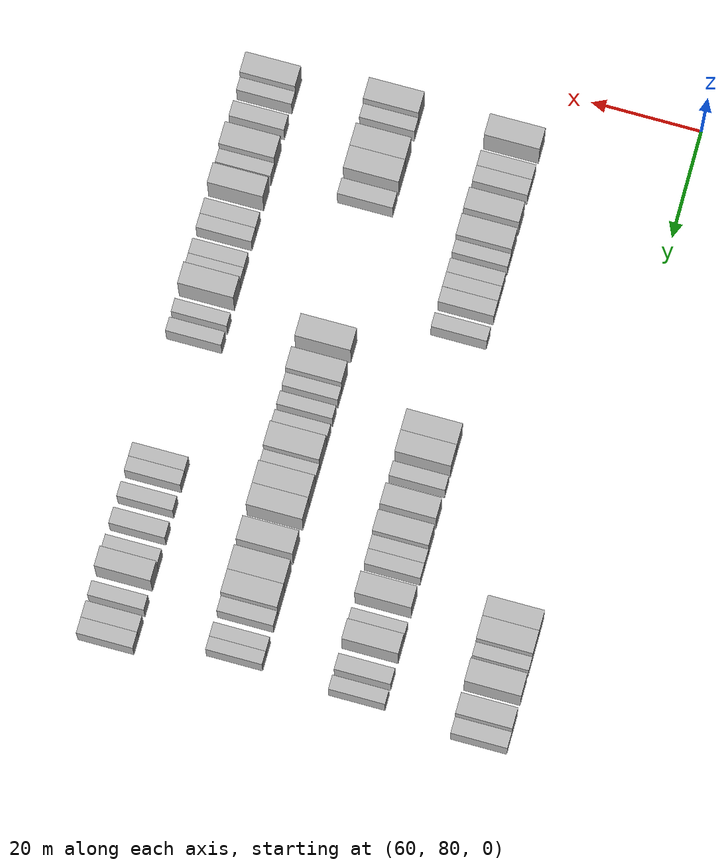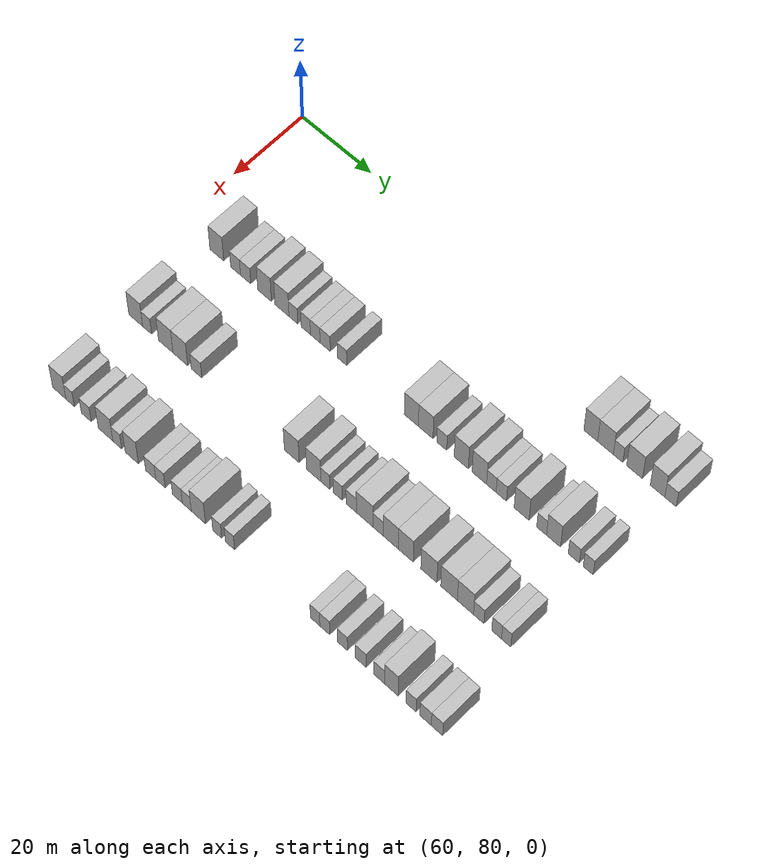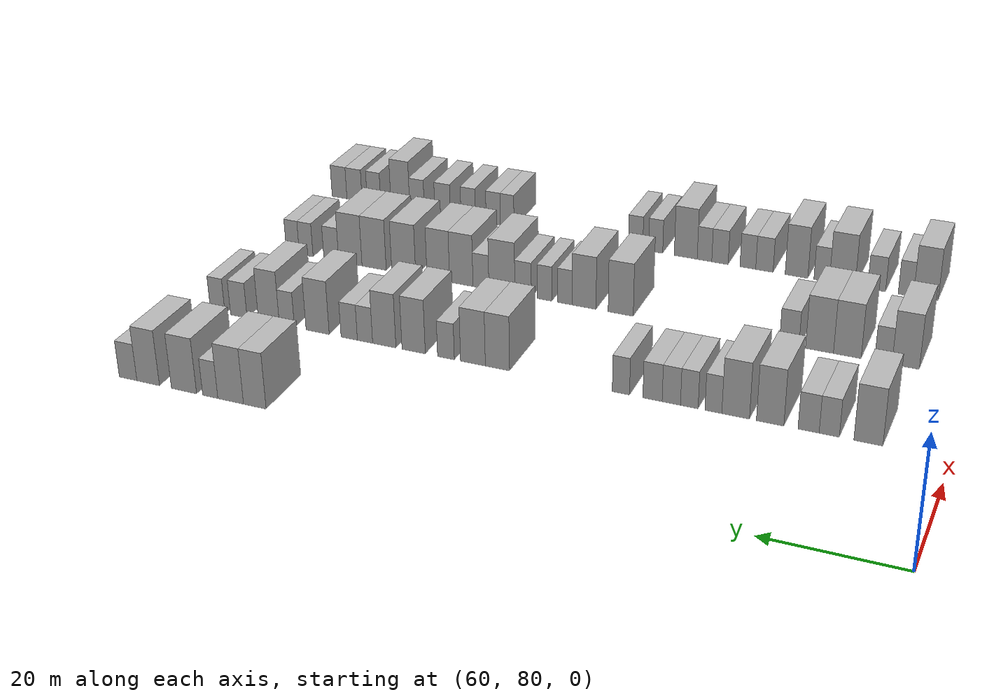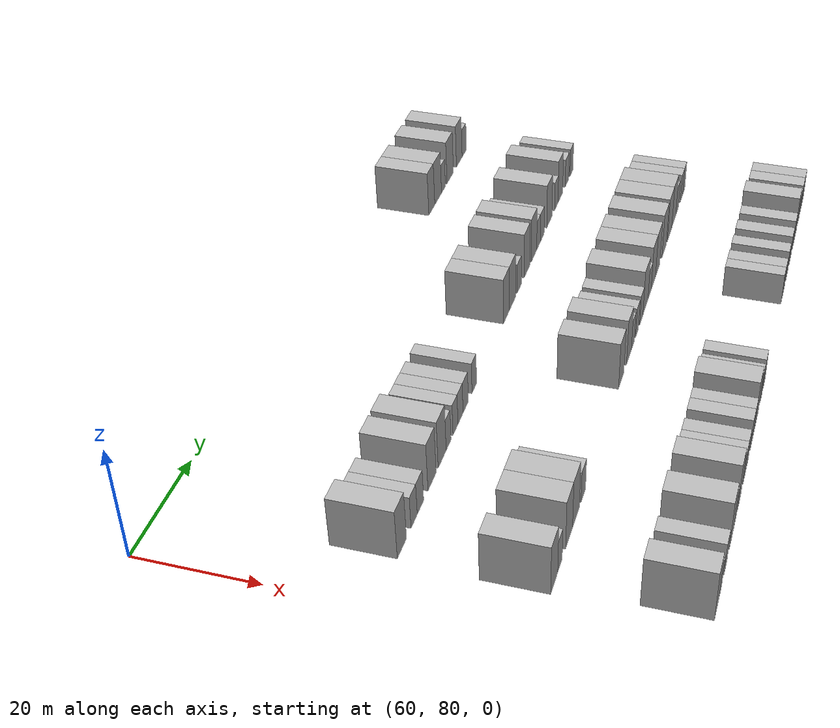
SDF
<sdf version="1.6">
 <world name="default">
  <model name="building_506">
   <static>1</static>
   <pose>69.0000 173.4881 0 0.000000 0.000000 0.000000</pose>
   <link name="link">
    <pose>0 0 4.50 0 0 0</pose>
    <collision name="collision"><geometry><box><size>10.0000 3.6244 9.0000</size></box></geometry></collision>
    <visual name="visual">
     <cast_shadows>0</cast_shadows>
     <geometry><box><size>10.0000 3.6244 9.0000</size></box></geometry>
     <material>
      <script>
       <uri>model://HANNAS_wall/materials/scripts</uri>
       <uri>model://HANNAS_wall/materials/textures</uri>
       <name>vrc/HANNAS_wall</name>
      </script>
     </material>
    </visual>
   </link>
  </model>
  <model name="building_507">
   <static>1</static>
   <pose>69.0000 177.3766 0 0.000000 0.000000 0.000000</pose>
   <link name="link">
    <pose>0 0 4.50 0 0 0</pose>
    <collision name="collision"><geometry><box><size>10.0000 4.1527 9.0000</size></box></geometry></collision>
    <visual name="visual">
     <cast_shadows>0</cast_shadows>
     <geometry><box><size>10.0000 4.1527 9.0000</size></box></geometry>
     <material>
      <script>
       <uri>model://HANNAS_wall/materials/scripts</uri>
       <uri>model://HANNAS_wall/materials/textures</uri>
       <name>vrc/HANNAS_wall</name>
      </script>
     </material>
    </visual>
   </link>
  </model>
  <model name="building_508">
   <static>1</static>
   <pose>69.0000 180.6867 0 0.000000 0.000000 0.000000</pose>
   <link name="link">
    <pose>0 0 3.00 0 0 0</pose>
    <collision name="collision"><geometry><box><size>10.0000 2.4676 6.0000</size></box></geometry></collision>
    <visual name="visual">
     <cast_shadows>0</cast_shadows>
     <geometry><box><size>10.0000 2.4676 6.0000</size></box></geometry>
     <material>
      <script>
       <uri>model://HANNAS_wall/materials/scripts</uri>
       <uri>model://HANNAS_wall/materials/textures</uri>
       <name>vrc/HANNAS_wall</name>
      </script>
     </material>
    </visual>
   </link>
  </model>
  <model name="building_509">
   <static>1</static>
   <pose>69.0000 184.9966 0 0.000000 0.000000 0.000000</pose>
   <link name="link">
    <pose>0 0 4.50 0 0 0</pose>
    <collision name="collision"><geometry><box><size>10.0000 4.1522 9.0000</size></box></geometry></collision>
    <visual name="visual">
     <cast_shadows>0</cast_shadows>
     <geometry><box><size>10.0000 4.1522 9.0000</size></box></geometry>
     <material>
      <script>
       <uri>model://HANNAS_wall/materials/scripts</uri>
       <uri>model://HANNAS_wall/materials/textures</uri>
       <name>vrc/HANNAS_wall</name>
      </script>
     </material>
    </visual>
   </link>
  </model>
  <model name="building_510">
   <static>1</static>
   <pose>69.0000 190.9611 0 0.000000 0.000000 0.000000</pose>
   <link name="link">
    <pose>0 0 4.50 0 0 0</pose>
    <collision name="collision"><geometry><box><size>10.0000 3.7767 9.0000</size></box></geometry></collision>
    <visual name="visual">
     <cast_shadows>0</cast_shadows>
     <geometry><box><size>10.0000 3.7767 9.0000</size></box></geometry>
     <material>
      <script>
       <uri>model://HANNAS_wall/materials/scripts</uri>
       <uri>model://HANNAS_wall/materials/textures</uri>
       <name>vrc/HANNAS_wall</name>
      </script>
     </material>
    </visual>
   </link>
  </model>
  <model name="building_511">
   <static>1</static>
   <pose>69.0000 194.3309 0 0.000000 0.000000 0.000000</pose>
   <link name="link">
    <pose>0 0 3.00 0 0 0</pose>
    <collision name="collision"><geometry><box><size>10.0000 2.9629 6.0000</size></box></geometry></collision>
    <visual name="visual">
     <cast_shadows>0</cast_shadows>
     <geometry><box><size>10.0000 2.9629 6.0000</size></box></geometry>
     <material>
      <script>
       <uri>model://HANNAS_wall/materials/scripts</uri>
       <uri>model://HANNAS_wall/materials/textures</uri>
       <name>vrc/HANNAS_wall</name>
      </script>
     </material>
    </visual>
   </link>
  </model>
  <model name="building_675">
   <static>1</static>
   <pose>91.0000 91.2529 0 0.000000 0.000000 0.000000</pose>
   <link name="link">
    <pose>0 0 4.50 0 0 0</pose>
    <collision name="collision"><geometry><box><size>10.0000 3.9817 9.0000</size></box></geometry></collision>
    <visual name="visual">
     <cast_shadows>0</cast_shadows>
     <geometry><box><size>10.0000 3.9817 9.0000</size></box></geometry>
     <material>
      <script>
       <uri>model://HANNAS_wall/materials/scripts</uri>
       <uri>model://HANNAS_wall/materials/textures</uri>
       <name>vrc/HANNAS_wall</name>
      </script>
     </material>
    </visual>
   </link>
  </model>
  <model name="building_676">
   <static>1</static>
   <pose>91.0000 96.6469 0 0.000000 0.000000 0.000000</pose>
   <link name="link">
    <pose>0 0 3.00 0 0 0</pose>
    <collision name="collision"><geometry><box><size>10.0000 2.8063 6.0000</size></box></geometry></collision>
    <visual name="visual">
     <cast_shadows>0</cast_shadows>
     <geometry><box><size>10.0000 2.8063 6.0000</size></box></geometry>
     <material>
      <script>
       <uri>model://HANNAS_wall/materials/scripts</uri>
       <uri>model://HANNAS_wall/materials/textures</uri>
       <name>vrc/HANNAS_wall</name>
      </script>
     </material>
    </visual>
   </link>
  </model>
  <model name="building_677">
   <static>1</static>
   <pose>91.0000 99.5297 0 0.000000 0.000000 0.000000</pose>
   <link name="link">
    <pose>0 0 3.00 0 0 0</pose>
    <collision name="collision"><geometry><box><size>10.0000 2.9593 6.0000</size></box></geometry></collision>
    <visual name="visual">
     <cast_shadows>0</cast_shadows>
     <geometry><box><size>10.0000 2.9593 6.0000</size></box></geometry>
     <material>
      <script>
       <uri>model://HANNAS_wall/materials/scripts</uri>
       <uri>model://HANNAS_wall/materials/textures</uri>
       <name>vrc/HANNAS_wall</name>
      </script>
     </material>
    </visual>
   </link>
  </model>
  <model name="building_678">
   <static>1</static>
   <pose>91.0000 104.9585 0 0.000000 0.000000 0.000000</pose>
   <link name="link">
    <pose>0 0 4.50 0 0 0</pose>
    <collision name="collision"><geometry><box><size>10.0000 3.8983 9.0000</size></box></geometry></collision>
    <visual name="visual">
     <cast_shadows>0</cast_shadows>
     <geometry><box><size>10.0000 3.8983 9.0000</size></box></geometry>
     <material>
      <script>
       <uri>model://HANNAS_wall/materials/scripts</uri>
       <uri>model://HANNAS_wall/materials/textures</uri>
       <name>vrc/HANNAS_wall</name>
      </script>
     </material>
    </visual>
   </link>
  </model>
  <model name="building_679">
   <static>1</static>
   <pose>91.0000 109.9000 0 0.000000 0.000000 0.000000</pose>
   <link name="link">
    <pose>0 0 4.50 0 0 0</pose>
    <collision name="collision"><geometry><box><size>10.0000 3.9847 9.0000</size></box></geometry></collision>
    <visual name="visual">
     <cast_shadows>0</cast_shadows>
     <geometry><box><size>10.0000 3.9847 9.0000</size></box></geometry>
     <material>
      <script>
       <uri>model://HANNAS_wall/materials/scripts</uri>
       <uri>model://HANNAS_wall/materials/textures</uri>
       <name>vrc/HANNAS_wall</name>
      </script>
     </material>
    </visual>
   </link>
  </model>
  <model name="building_680">
   <static>1</static>
   <pose>91.0000 113.1168 0 0.000000 0.000000 0.000000</pose>
   <link name="link">
    <pose>0 0 3.00 0 0 0</pose>
    <collision name="collision"><geometry><box><size>10.0000 2.4487 6.0000</size></box></geometry></collision>
    <visual name="visual">
     <cast_shadows>0</cast_shadows>
     <geometry><box><size>10.0000 2.4487 6.0000</size></box></geometry>
     <material>
      <script>
       <uri>model://HANNAS_wall/materials/scripts</uri>
       <uri>model://HANNAS_wall/materials/textures</uri>
       <name>vrc/HANNAS_wall</name>
      </script>
     </material>
    </visual>
   </link>
  </model>
  <model name="building_681">
   <static>1</static>
   <pose>91.0000 116.6339 0 0.000000 0.000000 0.000000</pose>
   <link name="link">
    <pose>0 0 3.00 0 0 0</pose>
    <collision name="collision"><geometry><box><size>10.0000 2.5855 6.0000</size></box></geometry></collision>
    <visual name="visual">
     <cast_shadows>0</cast_shadows>
     <geometry><box><size>10.0000 2.5855 6.0000</size></box></geometry>
     <material>
      <script>
       <uri>model://HANNAS_wall/materials/scripts</uri>
       <uri>model://HANNAS_wall/materials/textures</uri>
       <name>vrc/HANNAS_wall</name>
      </script>
     </material>
    </visual>
   </link>
  </model>
  <model name="building_682">
   <static>1</static>
   <pose>91.0000 119.2786 0 0.000000 0.000000 0.000000</pose>
   <link name="link">
    <pose>0 0 3.00 0 0 0</pose>
    <collision name="collision"><geometry><box><size>10.0000 2.7039 6.0000</size></box></geometry></collision>
    <visual name="visual">
     <cast_shadows>0</cast_shadows>
     <geometry><box><size>10.0000 2.7039 6.0000</size></box></geometry>
     <material>
      <script>
       <uri>model://HANNAS_wall/materials/scripts</uri>
       <uri>model://HANNAS_wall/materials/textures</uri>
       <name>vrc/HANNAS_wall</name>
      </script>
     </material>
    </visual>
   </link>
  </model>
  <model name="building_683">
   <static>1</static>
   <pose>91.0000 122.0599 0 0.000000 0.000000 0.000000</pose>
   <link name="link">
    <pose>0 0 3.00 0 0 0</pose>
    <collision name="collision"><geometry><box><size>10.0000 2.8586 6.0000</size></box></geometry></collision>
    <visual name="visual">
     <cast_shadows>0</cast_shadows>
     <geometry><box><size>10.0000 2.8586 6.0000</size></box></geometry>
     <material>
      <script>
       <uri>model://HANNAS_wall/materials/scripts</uri>
       <uri>model://HANNAS_wall/materials/textures</uri>
       <name>vrc/HANNAS_wall</name>
      </script>
     </material>
    </visual>
   </link>
  </model>
  <model name="building_684">
   <static>1</static>
   <pose>91.0000 126.7881 0 0.000000 0.000000 0.000000</pose>
   <link name="link">
    <pose>0 0 3.00 0 0 0</pose>
    <collision name="collision"><geometry><box><size>10.0000 2.5979 6.0000</size></box></geometry></collision>
    <visual name="visual">
     <cast_shadows>0</cast_shadows>
     <geometry><box><size>10.0000 2.5979 6.0000</size></box></geometry>
     <material>
      <script>
       <uri>model://HANNAS_wall/materials/scripts</uri>
       <uri>model://HANNAS_wall/materials/textures</uri>
       <name>vrc/HANNAS_wall</name>
      </script>
     </material>
    </visual>
   </link>
  </model>
  <model name="building_685">
   <static>1</static>
   <pose>91.0000 145.8479 0 0.000000 0.000000 0.000000</pose>
   <link name="link">
    <pose>0 0 4.50 0 0 0</pose>
    <collision name="collision"><geometry><box><size>10.0000 3.8405 9.0000</size></box></geometry></collision>
    <visual name="visual">
     <cast_shadows>0</cast_shadows>
     <geometry><box><size>10.0000 3.8405 9.0000</size></box></geometry>
     <material>
      <script>
       <uri>model://HANNAS_wall/materials/scripts</uri>
       <uri>model://HANNAS_wall/materials/textures</uri>
       <name>vrc/HANNAS_wall</name>
      </script>
     </material>
    </visual>
   </link>
  </model>
  <model name="building_686">
   <static>1</static>
   <pose>91.0000 149.7458 0 0.000000 0.000000 0.000000</pose>
   <link name="link">
    <pose>0 0 4.50 0 0 0</pose>
    <collision name="collision"><geometry><box><size>10.0000 3.9554 9.0000</size></box></geometry></collision>
    <visual name="visual">
     <cast_shadows>0</cast_shadows>
     <geometry><box><size>10.0000 3.9554 9.0000</size></box></geometry>
     <material>
      <script>
       <uri>model://HANNAS_wall/materials/scripts</uri>
       <uri>model://HANNAS_wall/materials/textures</uri>
       <name>vrc/HANNAS_wall</name>
      </script>
     </material>
    </visual>
   </link>
  </model>
  <model name="building_687">
   <static>1</static>
   <pose>91.0000 154.0762 0 0.000000 0.000000 0.000000</pose>
   <link name="link">
    <pose>0 0 3.00 0 0 0</pose>
    <collision name="collision"><geometry><box><size>10.0000 2.7052 6.0000</size></box></geometry></collision>
    <visual name="visual">
     <cast_shadows>0</cast_shadows>
     <geometry><box><size>10.0000 2.7052 6.0000</size></box></geometry>
     <material>
      <script>
       <uri>model://HANNAS_wall/materials/scripts</uri>
       <uri>model://HANNAS_wall/materials/textures</uri>
       <name>vrc/HANNAS_wall</name>
      </script>
     </material>
    </visual>
   </link>
  </model>
  <model name="building_688">
   <static>1</static>
   <pose>91.0000 159.3358 0 0.000000 0.000000 0.000000</pose>
   <link name="link">
    <pose>0 0 4.50 0 0 0</pose>
    <collision name="collision"><geometry><box><size>10.0000 3.8141 9.0000</size></box></geometry></collision>
    <visual name="visual">
     <cast_shadows>0</cast_shadows>
     <geometry><box><size>10.0000 3.8141 9.0000</size></box></geometry>
     <material>
      <script>
       <uri>model://HANNAS_wall/materials/scripts</uri>
       <uri>model://HANNAS_wall/materials/textures</uri>
       <name>vrc/HANNAS_wall</name>
      </script>
     </material>
    </visual>
   </link>
  </model>
  <model name="building_689">
   <static>1</static>
   <pose>91.0000 164.1728 0 0.000000 0.000000 0.000000</pose>
   <link name="link">
    <pose>0 0 4.50 0 0 0</pose>
    <collision name="collision"><geometry><box><size>10.0000 3.8598 9.0000</size></box></geometry></collision>
    <visual name="visual">
     <cast_shadows>0</cast_shadows>
     <geometry><box><size>10.0000 3.8598 9.0000</size></box></geometry>
     <material>
      <script>
       <uri>model://HANNAS_wall/materials/scripts</uri>
       <uri>model://HANNAS_wall/materials/textures</uri>
       <name>vrc/HANNAS_wall</name>
      </script>
     </material>
    </visual>
   </link>
  </model>
  <model name="building_690">
   <static>1</static>
   <pose>91.0000 167.3765 0 0.000000 0.000000 0.000000</pose>
   <link name="link">
    <pose>0 0 3.00 0 0 0</pose>
    <collision name="collision"><geometry><box><size>10.0000 2.5475 6.0000</size></box></geometry></collision>
    <visual name="visual">
     <cast_shadows>0</cast_shadows>
     <geometry><box><size>10.0000 2.5475 6.0000</size></box></geometry>
     <material>
      <script>
       <uri>model://HANNAS_wall/materials/scripts</uri>
       <uri>model://HANNAS_wall/materials/textures</uri>
       <name>vrc/HANNAS_wall</name>
      </script>
     </material>
    </visual>
   </link>
  </model>
  <model name="building_691">
   <static>1</static>
   <pose>91.0000 170.0229 0 0.000000 0.000000 0.000000</pose>
   <link name="link">
    <pose>0 0 3.00 0 0 0</pose>
    <collision name="collision"><geometry><box><size>10.0000 2.7454 6.0000</size></box></geometry></collision>
    <visual name="visual">
     <cast_shadows>0</cast_shadows>
     <geometry><box><size>10.0000 2.7454 6.0000</size></box></geometry>
     <material>
      <script>
       <uri>model://HANNAS_wall/materials/scripts</uri>
       <uri>model://HANNAS_wall/materials/textures</uri>
       <name>vrc/HANNAS_wall</name>
      </script>
     </material>
    </visual>
   </link>
  </model>
  <model name="building_692">
   <static>1</static>
   <pose>91.0000 175.3653 0 0.000000 0.000000 0.000000</pose>
   <link name="link">
    <pose>0 0 4.50 0 0 0</pose>
    <collision name="collision"><geometry><box><size>10.0000 3.9392 9.0000</size></box></geometry></collision>
    <visual name="visual">
     <cast_shadows>0</cast_shadows>
     <geometry><box><size>10.0000 3.9392 9.0000</size></box></geometry>
     <material>
      <script>
       <uri>model://HANNAS_wall/materials/scripts</uri>
       <uri>model://HANNAS_wall/materials/textures</uri>
       <name>vrc/HANNAS_wall</name>
      </script>
     </material>
    </visual>
   </link>
  </model>
  <model name="building_693">
   <static>1</static>
   <pose>91.0000 180.6300 0 0.000000 0.000000 0.000000</pose>
   <link name="link">
    <pose>0 0 3.00 0 0 0</pose>
    <collision name="collision"><geometry><box><size>10.0000 2.5902 6.0000</size></box></geometry></collision>
    <visual name="visual">
     <cast_shadows>0</cast_shadows>
     <geometry><box><size>10.0000 2.5902 6.0000</size></box></geometry>
     <material>
      <script>
       <uri>model://HANNAS_wall/materials/scripts</uri>
       <uri>model://HANNAS_wall/materials/textures</uri>
       <name>vrc/HANNAS_wall</name>
      </script>
     </material>
    </visual>
   </link>
  </model>
  <model name="building_694">
   <static>1</static>
   <pose>91.0000 183.7454 0 0.000000 0.000000 0.000000</pose>
   <link name="link">
    <pose>0 0 4.50 0 0 0</pose>
    <collision name="collision"><geometry><box><size>10.0000 3.6407 9.0000</size></box></geometry></collision>
    <visual name="visual">
     <cast_shadows>0</cast_shadows>
     <geometry><box><size>10.0000 3.6407 9.0000</size></box></geometry>
     <material>
      <script>
       <uri>model://HANNAS_wall/materials/scripts</uri>
       <uri>model://HANNAS_wall/materials/textures</uri>
       <name>vrc/HANNAS_wall</name>
      </script>
     </material>
    </visual>
   </link>
  </model>
  <model name="building_695">
   <static>1</static>
   <pose>91.0000 189.0117 0 0.000000 0.000000 0.000000</pose>
   <link name="link">
    <pose>0 0 3.00 0 0 0</pose>
    <collision name="collision"><geometry><box><size>10.0000 2.8918 6.0000</size></box></geometry></collision>
    <visual name="visual">
     <cast_shadows>0</cast_shadows>
     <geometry><box><size>10.0000 2.8918 6.0000</size></box></geometry>
     <material>
      <script>
       <uri>model://HANNAS_wall/materials/scripts</uri>
       <uri>model://HANNAS_wall/materials/textures</uri>
       <name>vrc/HANNAS_wall</name>
      </script>
     </material>
    </visual>
   </link>
  </model>
  <model name="building_696">
   <static>1</static>
   <pose>91.0000 192.7382 0 0.000000 0.000000 0.000000</pose>
   <link name="link">
    <pose>0 0 3.00 0 0 0</pose>
    <collision name="collision"><geometry><box><size>10.0000 2.5612 6.0000</size></box></geometry></collision>
    <visual name="visual">
     <cast_shadows>0</cast_shadows>
     <geometry><box><size>10.0000 2.5612 6.0000</size></box></geometry>
     <material>
      <script>
       <uri>model://HANNAS_wall/materials/scripts</uri>
       <uri>model://HANNAS_wall/materials/textures</uri>
       <name>vrc/HANNAS_wall</name>
      </script>
     </material>
    </visual>
   </link>
  </model>
  <model name="building_860">
   <static>1</static>
   <pose>113.0000 90.5092 0 0.000000 0.000000 0.000000</pose>
   <link name="link">
    <pose>0 0 4.50 0 0 0</pose>
    <collision name="collision"><geometry><box><size>10.0000 3.9956 9.0000</size></box></geometry></collision>
    <visual name="visual">
     <cast_shadows>0</cast_shadows>
     <geometry><box><size>10.0000 3.9956 9.0000</size></box></geometry>
     <material>
      <script>
       <uri>model://HANNAS_wall/materials/scripts</uri>
       <uri>model://HANNAS_wall/materials/textures</uri>
       <name>vrc/HANNAS_wall</name>
      </script>
     </material>
    </visual>
   </link>
  </model>
  <model name="building_861">
   <static>1</static>
   <pose>113.0000 93.7954 0 0.000000 0.000000 0.000000</pose>
   <link name="link">
    <pose>0 0 3.00 0 0 0</pose>
    <collision name="collision"><geometry><box><size>10.0000 2.5767 6.0000</size></box></geometry></collision>
    <visual name="visual">
     <cast_shadows>0</cast_shadows>
     <geometry><box><size>10.0000 2.5767 6.0000</size></box></geometry>
     <material>
      <script>
       <uri>model://HANNAS_wall/materials/scripts</uri>
       <uri>model://HANNAS_wall/materials/textures</uri>
       <name>vrc/HANNAS_wall</name>
      </script>
     </material>
    </visual>
   </link>
  </model>
  <model name="building_862">
   <static>1</static>
   <pose>113.0000 99.1512 0 0.000000 0.000000 0.000000</pose>
   <link name="link">
    <pose>0 0 4.50 0 0 0</pose>
    <collision name="collision"><geometry><box><size>10.0000 4.1348 9.0000</size></box></geometry></collision>
    <visual name="visual">
     <cast_shadows>0</cast_shadows>
     <geometry><box><size>10.0000 4.1348 9.0000</size></box></geometry>
     <material>
      <script>
       <uri>model://HANNAS_wall/materials/scripts</uri>
       <uri>model://HANNAS_wall/materials/textures</uri>
       <name>vrc/HANNAS_wall</name>
      </script>
     </material>
    </visual>
   </link>
  </model>
  <model name="building_863">
   <static>1</static>
   <pose>113.0000 103.3302 0 0.000000 0.000000 0.000000</pose>
   <link name="link">
    <pose>0 0 4.50 0 0 0</pose>
    <collision name="collision"><geometry><box><size>10.0000 4.2232 9.0000</size></box></geometry></collision>
    <visual name="visual">
     <cast_shadows>0</cast_shadows>
     <geometry><box><size>10.0000 4.2232 9.0000</size></box></geometry>
     <material>
      <script>
       <uri>model://HANNAS_wall/materials/scripts</uri>
       <uri>model://HANNAS_wall/materials/textures</uri>
       <name>vrc/HANNAS_wall</name>
      </script>
     </material>
    </visual>
   </link>
  </model>
  <model name="building_864">
   <static>1</static>
   <pose>113.0000 107.9316 0 0.000000 0.000000 0.000000</pose>
   <link name="link">
    <pose>0 0 3.00 0 0 0</pose>
    <collision name="collision"><geometry><box><size>10.0000 2.9796 6.0000</size></box></geometry></collision>
    <visual name="visual">
     <cast_shadows>0</cast_shadows>
     <geometry><box><size>10.0000 2.9796 6.0000</size></box></geometry>
     <material>
      <script>
       <uri>model://HANNAS_wall/materials/scripts</uri>
       <uri>model://HANNAS_wall/materials/textures</uri>
       <name>vrc/HANNAS_wall</name>
      </script>
     </material>
    </visual>
   </link>
  </model>
  <model name="building_865">
   <static>1</static>
   <pose>113.0000 134.5633 0 0.000000 0.000000 0.000000</pose>
   <link name="link">
    <pose>0 0 4.50 0 0 0</pose>
    <collision name="collision"><geometry><box><size>10.0000 4.0946 9.0000</size></box></geometry></collision>
    <visual name="visual">
     <cast_shadows>0</cast_shadows>
     <geometry><box><size>10.0000 4.0946 9.0000</size></box></geometry>
     <material>
      <script>
       <uri>model://HANNAS_wall/materials/scripts</uri>
       <uri>model://HANNAS_wall/materials/textures</uri>
       <name>vrc/HANNAS_wall</name>
      </script>
     </material>
    </visual>
   </link>
  </model>
  <model name="building_866">
   <static>1</static>
   <pose>113.0000 140.5781 0 0.000000 0.000000 0.000000</pose>
   <link name="link">
    <pose>0 0 4.50 0 0 0</pose>
    <collision name="collision"><geometry><box><size>10.0000 3.9350 9.0000</size></box></geometry></collision>
    <visual name="visual">
     <cast_shadows>0</cast_shadows>
     <geometry><box><size>10.0000 3.9350 9.0000</size></box></geometry>
     <material>
      <script>
       <uri>model://HANNAS_wall/materials/scripts</uri>
       <uri>model://HANNAS_wall/materials/textures</uri>
       <name>vrc/HANNAS_wall</name>
      </script>
     </material>
    </visual>
   </link>
  </model>
  <model name="building_867">
   <static>1</static>
   <pose>113.0000 143.7592 0 0.000000 0.000000 0.000000</pose>
   <link name="link">
    <pose>0 0 3.00 0 0 0</pose>
    <collision name="collision"><geometry><box><size>10.0000 2.4272 6.0000</size></box></geometry></collision>
    <visual name="visual">
     <cast_shadows>0</cast_shadows>
     <geometry><box><size>10.0000 2.4272 6.0000</size></box></geometry>
     <material>
      <script>
       <uri>model://HANNAS_wall/materials/scripts</uri>
       <uri>model://HANNAS_wall/materials/textures</uri>
       <name>vrc/HANNAS_wall</name>
      </script>
     </material>
    </visual>
   </link>
  </model>
  <model name="building_868">
   <static>1</static>
   <pose>113.0000 147.1891 0 0.000000 0.000000 0.000000</pose>
   <link name="link">
    <pose>0 0 3.00 0 0 0</pose>
    <collision name="collision"><geometry><box><size>10.0000 2.4325 6.0000</size></box></geometry></collision>
    <visual name="visual">
     <cast_shadows>0</cast_shadows>
     <geometry><box><size>10.0000 2.4325 6.0000</size></box></geometry>
     <material>
      <script>
       <uri>model://HANNAS_wall/materials/scripts</uri>
       <uri>model://HANNAS_wall/materials/textures</uri>
       <name>vrc/HANNAS_wall</name>
      </script>
     </material>
    </visual>
   </link>
  </model>
  <model name="building_869">
   <static>1</static>
   <pose>113.0000 150.8046 0 0.000000 0.000000 0.000000</pose>
   <link name="link">
    <pose>0 0 3.00 0 0 0</pose>
    <collision name="collision"><geometry><box><size>10.0000 2.7986 6.0000</size></box></geometry></collision>
    <visual name="visual">
     <cast_shadows>0</cast_shadows>
     <geometry><box><size>10.0000 2.7986 6.0000</size></box></geometry>
     <material>
      <script>
       <uri>model://HANNAS_wall/materials/scripts</uri>
       <uri>model://HANNAS_wall/materials/textures</uri>
       <name>vrc/HANNAS_wall</name>
      </script>
     </material>
    </visual>
   </link>
  </model>
  <model name="building_870">
   <static>1</static>
   <pose>113.0000 154.4270 0 0.000000 0.000000 0.000000</pose>
   <link name="link">
    <pose>0 0 4.50 0 0 0</pose>
    <collision name="collision"><geometry><box><size>10.0000 4.4460 9.0000</size></box></geometry></collision>
    <visual name="visual">
     <cast_shadows>0</cast_shadows>
     <geometry><box><size>10.0000 4.4460 9.0000</size></box></geometry>
     <material>
      <script>
       <uri>model://HANNAS_wall/materials/scripts</uri>
       <uri>model://HANNAS_wall/materials/textures</uri>
       <name>vrc/HANNAS_wall</name>
      </script>
     </material>
    </visual>
   </link>
  </model>
  <model name="building_871">
   <static>1</static>
   <pose>113.0000 158.0228 0 0.000000 0.000000 0.000000</pose>
   <link name="link">
    <pose>0 0 3.00 0 0 0</pose>
    <collision name="collision"><geometry><box><size>10.0000 2.7457 6.0000</size></box></geometry></collision>
    <visual name="visual">
     <cast_shadows>0</cast_shadows>
     <geometry><box><size>10.0000 2.7457 6.0000</size></box></geometry>
     <material>
      <script>
       <uri>model://HANNAS_wall/materials/scripts</uri>
       <uri>model://HANNAS_wall/materials/textures</uri>
       <name>vrc/HANNAS_wall</name>
      </script>
     </material>
    </visual>
   </link>
  </model>
  <model name="building_872">
   <static>1</static>
   <pose>113.0000 161.4268 0 0.000000 0.000000 0.000000</pose>
   <link name="link">
    <pose>0 0 4.50 0 0 0</pose>
    <collision name="collision"><geometry><box><size>10.0000 4.0623 9.0000</size></box></geometry></collision>
    <visual name="visual">
     <cast_shadows>0</cast_shadows>
     <geometry><box><size>10.0000 4.0623 9.0000</size></box></geometry>
     <material>
      <script>
       <uri>model://HANNAS_wall/materials/scripts</uri>
       <uri>model://HANNAS_wall/materials/textures</uri>
       <name>vrc/HANNAS_wall</name>
      </script>
     </material>
    </visual>
   </link>
  </model>
  <model name="building_873">
   <static>1</static>
   <pose>113.0000 165.4448 0 0.000000 0.000000 0.000000</pose>
   <link name="link">
    <pose>0 0 4.50 0 0 0</pose>
    <collision name="collision"><geometry><box><size>10.0000 3.9738 9.0000</size></box></geometry></collision>
    <visual name="visual">
     <cast_shadows>0</cast_shadows>
     <geometry><box><size>10.0000 3.9738 9.0000</size></box></geometry>
     <material>
      <script>
       <uri>model://HANNAS_wall/materials/scripts</uri>
       <uri>model://HANNAS_wall/materials/textures</uri>
       <name>vrc/HANNAS_wall</name>
      </script>
     </material>
    </visual>
   </link>
  </model>
  <model name="building_874">
   <static>1</static>
   <pose>113.0000 171.5620 0 0.000000 0.000000 0.000000</pose>
   <link name="link">
    <pose>0 0 4.50 0 0 0</pose>
    <collision name="collision"><geometry><box><size>10.0000 4.2605 9.0000</size></box></geometry></collision>
    <visual name="visual">
     <cast_shadows>0</cast_shadows>
     <geometry><box><size>10.0000 4.2605 9.0000</size></box></geometry>
     <material>
      <script>
       <uri>model://HANNAS_wall/materials/scripts</uri>
       <uri>model://HANNAS_wall/materials/textures</uri>
       <name>vrc/HANNAS_wall</name>
      </script>
     </material>
    </visual>
   </link>
  </model>
  <model name="building_875">
   <static>1</static>
   <pose>113.0000 176.8735 0 0.000000 0.000000 0.000000</pose>
   <link name="link">
    <pose>0 0 4.50 0 0 0</pose>
    <collision name="collision"><geometry><box><size>10.0000 4.3626 9.0000</size></box></geometry></collision>
    <visual name="visual">
     <cast_shadows>0</cast_shadows>
     <geometry><box><size>10.0000 4.3626 9.0000</size></box></geometry>
     <material>
      <script>
       <uri>model://HANNAS_wall/materials/scripts</uri>
       <uri>model://HANNAS_wall/materials/textures</uri>
       <name>vrc/HANNAS_wall</name>
      </script>
     </material>
    </visual>
   </link>
  </model>
  <model name="building_876">
   <static>1</static>
   <pose>113.0000 181.1765 0 0.000000 0.000000 0.000000</pose>
   <link name="link">
    <pose>0 0 4.50 0 0 0</pose>
    <collision name="collision"><geometry><box><size>10.0000 4.2434 9.0000</size></box></geometry></collision>
    <visual name="visual">
     <cast_shadows>0</cast_shadows>
     <geometry><box><size>10.0000 4.2434 9.0000</size></box></geometry>
     <material>
      <script>
       <uri>model://HANNAS_wall/materials/scripts</uri>
       <uri>model://HANNAS_wall/materials/textures</uri>
       <name>vrc/HANNAS_wall</name>
      </script>
     </material>
    </visual>
   </link>
  </model>
  <model name="building_877">
   <static>1</static>
   <pose>113.0000 184.6581 0 0.000000 0.000000 0.000000</pose>
   <link name="link">
    <pose>0 0 3.00 0 0 0</pose>
    <collision name="collision"><geometry><box><size>10.0000 2.7197 6.0000</size></box></geometry></collision>
    <visual name="visual">
     <cast_shadows>0</cast_shadows>
     <geometry><box><size>10.0000 2.7197 6.0000</size></box></geometry>
     <material>
      <script>
       <uri>model://HANNAS_wall/materials/scripts</uri>
       <uri>model://HANNAS_wall/materials/textures</uri>
       <name>vrc/HANNAS_wall</name>
      </script>
     </material>
    </visual>
   </link>
  </model>
  <model name="building_878">
   <static>1</static>
   <pose>113.0000 189.2901 0 0.000000 0.000000 0.000000</pose>
   <link name="link">
    <pose>0 0 3.00 0 0 0</pose>
    <collision name="collision"><geometry><box><size>10.0000 2.5443 6.0000</size></box></geometry></collision>
    <visual name="visual">
     <cast_shadows>0</cast_shadows>
     <geometry><box><size>10.0000 2.5443 6.0000</size></box></geometry>
     <material>
      <script>
       <uri>model://HANNAS_wall/materials/scripts</uri>
       <uri>model://HANNAS_wall/materials/textures</uri>
       <name>vrc/HANNAS_wall</name>
      </script>
     </material>
    </visual>
   </link>
  </model>
  <model name="building_879">
   <static>1</static>
   <pose>113.0000 191.7629 0 0.000000 0.000000 0.000000</pose>
   <link name="link">
    <pose>0 0 3.00 0 0 0</pose>
    <collision name="collision"><geometry><box><size>10.0000 2.4013 6.0000</size></box></geometry></collision>
    <visual name="visual">
     <cast_shadows>0</cast_shadows>
     <geometry><box><size>10.0000 2.4013 6.0000</size></box></geometry>
     <material>
      <script>
       <uri>model://HANNAS_wall/materials/scripts</uri>
       <uri>model://HANNAS_wall/materials/textures</uri>
       <name>vrc/HANNAS_wall</name>
      </script>
     </material>
    </visual>
   </link>
  </model>
  <model name="building_1054">
   <static>1</static>
   <pose>135.0000 91.6742 0 0.000000 0.000000 0.000000</pose>
   <link name="link">
    <pose>0 0 4.50 0 0 0</pose>
    <collision name="collision"><geometry><box><size>10.0000 3.8459 9.0000</size></box></geometry></collision>
    <visual name="visual">
     <cast_shadows>0</cast_shadows>
     <geometry><box><size>10.0000 3.8459 9.0000</size></box></geometry>
     <material>
      <script>
       <uri>model://HANNAS_wall/materials/scripts</uri>
       <uri>model://HANNAS_wall/materials/textures</uri>
       <name>vrc/HANNAS_wall</name>
      </script>
     </material>
    </visual>
   </link>
  </model>
  <model name="building_1055">
   <static>1</static>
   <pose>135.0000 94.8050 0 0.000000 0.000000 0.000000</pose>
   <link name="link">
    <pose>0 0 3.00 0 0 0</pose>
    <collision name="collision"><geometry><box><size>10.0000 2.4157 6.0000</size></box></geometry></collision>
    <visual name="visual">
     <cast_shadows>0</cast_shadows>
     <geometry><box><size>10.0000 2.4157 6.0000</size></box></geometry>
     <material>
      <script>
       <uri>model://HANNAS_wall/materials/scripts</uri>
       <uri>model://HANNAS_wall/materials/textures</uri>
       <name>vrc/HANNAS_wall</name>
      </script>
     </material>
    </visual>
   </link>
  </model>
  <model name="building_1056">
   <static>1</static>
   <pose>135.0000 99.4468 0 0.000000 0.000000 0.000000</pose>
   <link name="link">
    <pose>0 0 3.00 0 0 0</pose>
    <collision name="collision"><geometry><box><size>10.0000 2.8678 6.0000</size></box></geometry></collision>
    <visual name="visual">
     <cast_shadows>0</cast_shadows>
     <geometry><box><size>10.0000 2.8678 6.0000</size></box></geometry>
     <material>
      <script>
       <uri>model://HANNAS_wall/materials/scripts</uri>
       <uri>model://HANNAS_wall/materials/textures</uri>
       <name>vrc/HANNAS_wall</name>
      </script>
     </material>
    </visual>
   </link>
  </model>
  <model name="building_1057">
   <static>1</static>
   <pose>135.0000 104.9571 0 0.000000 0.000000 0.000000</pose>
   <link name="link">
    <pose>0 0 4.50 0 0 0</pose>
    <collision name="collision"><geometry><box><size>10.0000 4.1529 9.0000</size></box></geometry></collision>
    <visual name="visual">
     <cast_shadows>0</cast_shadows>
     <geometry><box><size>10.0000 4.1529 9.0000</size></box></geometry>
     <material>
      <script>
       <uri>model://HANNAS_wall/materials/scripts</uri>
       <uri>model://HANNAS_wall/materials/textures</uri>
       <name>vrc/HANNAS_wall</name>
      </script>
     </material>
    </visual>
   </link>
  </model>
  <model name="building_1058">
   <static>1</static>
   <pose>135.0000 108.2947 0 0.000000 0.000000 0.000000</pose>
   <link name="link">
    <pose>0 0 3.00 0 0 0</pose>
    <collision name="collision"><geometry><box><size>10.0000 2.5223 6.0000</size></box></geometry></collision>
    <visual name="visual">
     <cast_shadows>0</cast_shadows>
     <geometry><box><size>10.0000 2.5223 6.0000</size></box></geometry>
     <material>
      <script>
       <uri>model://HANNAS_wall/materials/scripts</uri>
       <uri>model://HANNAS_wall/materials/textures</uri>
       <name>vrc/HANNAS_wall</name>
      </script>
     </material>
    </visual>
   </link>
  </model>
  <model name="building_1059">
   <static>1</static>
   <pose>135.0000 112.4159 0 0.000000 0.000000 0.000000</pose>
   <link name="link">
    <pose>0 0 4.50 0 0 0</pose>
    <collision name="collision"><geometry><box><size>10.0000 3.7201 9.0000</size></box></geometry></collision>
    <visual name="visual">
     <cast_shadows>0</cast_shadows>
     <geometry><box><size>10.0000 3.7201 9.0000</size></box></geometry>
     <material>
      <script>
       <uri>model://HANNAS_wall/materials/scripts</uri>
       <uri>model://HANNAS_wall/materials/textures</uri>
       <name>vrc/HANNAS_wall</name>
      </script>
     </material>
    </visual>
   </link>
  </model>
  <model name="building_1060">
   <static>1</static>
   <pose>135.0000 117.7207 0 0.000000 0.000000 0.000000</pose>
   <link name="link">
    <pose>0 0 3.00 0 0 0</pose>
    <collision name="collision"><geometry><box><size>10.0000 2.8896 6.0000</size></box></geometry></collision>
    <visual name="visual">
     <cast_shadows>0</cast_shadows>
     <geometry><box><size>10.0000 2.8896 6.0000</size></box></geometry>
     <material>
      <script>
       <uri>model://HANNAS_wall/materials/scripts</uri>
       <uri>model://HANNAS_wall/materials/textures</uri>
       <name>vrc/HANNAS_wall</name>
      </script>
     </material>
    </visual>
   </link>
  </model>
  <model name="building_1061">
   <static>1</static>
   <pose>135.0000 120.4806 0 0.000000 0.000000 0.000000</pose>
   <link name="link">
    <pose>0 0 3.00 0 0 0</pose>
    <collision name="collision"><geometry><box><size>10.0000 2.6302 6.0000</size></box></geometry></collision>
    <visual name="visual">
     <cast_shadows>0</cast_shadows>
     <geometry><box><size>10.0000 2.6302 6.0000</size></box></geometry>
     <material>
      <script>
       <uri>model://HANNAS_wall/materials/scripts</uri>
       <uri>model://HANNAS_wall/materials/textures</uri>
       <name>vrc/HANNAS_wall</name>
      </script>
     </material>
    </visual>
   </link>
  </model>
  <model name="building_1062">
   <static>1</static>
   <pose>135.0000 125.1815 0 0.000000 0.000000 0.000000</pose>
   <link name="link">
    <pose>0 0 3.00 0 0 0</pose>
    <collision name="collision"><geometry><box><size>10.0000 2.7716 6.0000</size></box></geometry></collision>
    <visual name="visual">
     <cast_shadows>0</cast_shadows>
     <geometry><box><size>10.0000 2.7716 6.0000</size></box></geometry>
     <material>
      <script>
       <uri>model://HANNAS_wall/materials/scripts</uri>
       <uri>model://HANNAS_wall/materials/textures</uri>
       <name>vrc/HANNAS_wall</name>
      </script>
     </material>
    </visual>
   </link>
  </model>
  <model name="building_1063">
   <static>1</static>
   <pose>135.0000 127.8080 0 0.000000 0.000000 0.000000</pose>
   <link name="link">
    <pose>0 0 3.00 0 0 0</pose>
    <collision name="collision"><geometry><box><size>10.0000 2.4814 6.0000</size></box></geometry></collision>
    <visual name="visual">
     <cast_shadows>0</cast_shadows>
     <geometry><box><size>10.0000 2.4814 6.0000</size></box></geometry>
     <material>
      <script>
       <uri>model://HANNAS_wall/materials/scripts</uri>
       <uri>model://HANNAS_wall/materials/textures</uri>
       <name>vrc/HANNAS_wall</name>
      </script>
     </material>
    </visual>
   </link>
  </model>
  <model name="building_1064">
   <static>1</static>
   <pose>135.0000 131.0123 0 0.000000 0.000000 0.000000</pose>
   <link name="link">
    <pose>0 0 4.50 0 0 0</pose>
    <collision name="collision"><geometry><box><size>10.0000 3.9272 9.0000</size></box></geometry></collision>
    <visual name="visual">
     <cast_shadows>0</cast_shadows>
     <geometry><box><size>10.0000 3.9272 9.0000</size></box></geometry>
     <material>
      <script>
       <uri>model://HANNAS_wall/materials/scripts</uri>
       <uri>model://HANNAS_wall/materials/textures</uri>
       <name>vrc/HANNAS_wall</name>
      </script>
     </material>
    </visual>
   </link>
  </model>
  <model name="building_1065">
   <static>1</static>
   <pose>135.0000 136.2072 0 0.000000 0.000000 0.000000</pose>
   <link name="link">
    <pose>0 0 3.00 0 0 0</pose>
    <collision name="collision"><geometry><box><size>10.0000 2.4626 6.0000</size></box></geometry></collision>
    <visual name="visual">
     <cast_shadows>0</cast_shadows>
     <geometry><box><size>10.0000 2.4626 6.0000</size></box></geometry>
     <material>
      <script>
       <uri>model://HANNAS_wall/materials/scripts</uri>
       <uri>model://HANNAS_wall/materials/textures</uri>
       <name>vrc/HANNAS_wall</name>
      </script>
     </material>
    </visual>
   </link>
  </model>
  <model name="building_1066">
   <static>1</static>
   <pose>135.0000 139.6991 0 0.000000 0.000000 0.000000</pose>
   <link name="link">
    <pose>0 0 3.00 0 0 0</pose>
    <collision name="collision"><geometry><box><size>10.0000 2.5211 6.0000</size></box></geometry></collision>
    <visual name="visual">
     <cast_shadows>0</cast_shadows>
     <geometry><box><size>10.0000 2.5211 6.0000</size></box></geometry>
     <material>
      <script>
       <uri>model://HANNAS_wall/materials/scripts</uri>
       <uri>model://HANNAS_wall/materials/textures</uri>
       <name>vrc/HANNAS_wall</name>
      </script>
     </material>
    </visual>
   </link>
  </model>
  <model name="building_1067">
   <static>1</static>
   <pose>135.0000 162.7227 0 0.000000 0.000000 0.000000</pose>
   <link name="link">
    <pose>0 0 3.00 0 0 0</pose>
    <collision name="collision"><geometry><box><size>10.0000 2.5087 6.0000</size></box></geometry></collision>
    <visual name="visual">
     <cast_shadows>0</cast_shadows>
     <geometry><box><size>10.0000 2.5087 6.0000</size></box></geometry>
     <material>
      <script>
       <uri>model://HANNAS_wall/materials/scripts</uri>
       <uri>model://HANNAS_wall/materials/textures</uri>
       <name>vrc/HANNAS_wall</name>
      </script>
     </material>
    </visual>
   </link>
  </model>
  <model name="building_1068">
   <static>1</static>
   <pose>135.0000 165.2907 0 0.000000 0.000000 0.000000</pose>
   <link name="link">
    <pose>0 0 3.00 0 0 0</pose>
    <collision name="collision"><geometry><box><size>10.0000 2.6273 6.0000</size></box></geometry></collision>
    <visual name="visual">
     <cast_shadows>0</cast_shadows>
     <geometry><box><size>10.0000 2.6273 6.0000</size></box></geometry>
     <material>
      <script>
       <uri>model://HANNAS_wall/materials/scripts</uri>
       <uri>model://HANNAS_wall/materials/textures</uri>
       <name>vrc/HANNAS_wall</name>
      </script>
     </material>
    </visual>
   </link>
  </model>
  <model name="building_1069">
   <static>1</static>
   <pose>135.0000 169.9487 0 0.000000 0.000000 0.000000</pose>
   <link name="link">
    <pose>0 0 3.00 0 0 0</pose>
    <collision name="collision"><geometry><box><size>10.0000 2.6888 6.0000</size></box></geometry></collision>
    <visual name="visual">
     <cast_shadows>0</cast_shadows>
     <geometry><box><size>10.0000 2.6888 6.0000</size></box></geometry>
     <material>
      <script>
       <uri>model://HANNAS_wall/materials/scripts</uri>
       <uri>model://HANNAS_wall/materials/textures</uri>
       <name>vrc/HANNAS_wall</name>
      </script>
     </material>
    </visual>
   </link>
  </model>
  <model name="building_1070">
   <static>1</static>
   <pose>135.0000 174.7554 0 0.000000 0.000000 0.000000</pose>
   <link name="link">
    <pose>0 0 3.00 0 0 0</pose>
    <collision name="collision"><geometry><box><size>10.0000 2.9246 6.0000</size></box></geometry></collision>
    <visual name="visual">
     <cast_shadows>0</cast_shadows>
     <geometry><box><size>10.0000 2.9246 6.0000</size></box></geometry>
     <material>
      <script>
       <uri>model://HANNAS_wall/materials/scripts</uri>
       <uri>model://HANNAS_wall/materials/textures</uri>
       <name>vrc/HANNAS_wall</name>
      </script>
     </material>
    </visual>
   </link>
  </model>
  <model name="building_1071">
   <static>1</static>
   <pose>135.0000 179.6100 0 0.000000 0.000000 0.000000</pose>
   <link name="link">
    <pose>0 0 3.00 0 0 0</pose>
    <collision name="collision"><geometry><box><size>10.0000 2.7846 6.0000</size></box></geometry></collision>
    <visual name="visual">
     <cast_shadows>0</cast_shadows>
     <geometry><box><size>10.0000 2.7846 6.0000</size></box></geometry>
     <material>
      <script>
       <uri>model://HANNAS_wall/materials/scripts</uri>
       <uri>model://HANNAS_wall/materials/textures</uri>
       <name>vrc/HANNAS_wall</name>
      </script>
     </material>
    </visual>
   </link>
  </model>
  <model name="building_1072">
   <static>1</static>
   <pose>135.0000 182.8026 0 0.000000 0.000000 0.000000</pose>
   <link name="link">
    <pose>0 0 4.50 0 0 0</pose>
    <collision name="collision"><geometry><box><size>10.0000 3.6006 9.0000</size></box></geometry></collision>
    <visual name="visual">
     <cast_shadows>0</cast_shadows>
     <geometry><box><size>10.0000 3.6006 9.0000</size></box></geometry>
     <material>
      <script>
       <uri>model://HANNAS_wall/materials/scripts</uri>
       <uri>model://HANNAS_wall/materials/textures</uri>
       <name>vrc/HANNAS_wall</name>
      </script>
     </material>
    </visual>
   </link>
  </model>
  <model name="building_1073">
   <static>1</static>
   <pose>135.0000 187.9131 0 0.000000 0.000000 0.000000</pose>
   <link name="link">
    <pose>0 0 3.00 0 0 0</pose>
    <collision name="collision"><geometry><box><size>10.0000 2.6202 6.0000</size></box></geometry></collision>
    <visual name="visual">
     <cast_shadows>0</cast_shadows>
     <geometry><box><size>10.0000 2.6202 6.0000</size></box></geometry>
     <material>
      <script>
       <uri>model://HANNAS_wall/materials/scripts</uri>
       <uri>model://HANNAS_wall/materials/textures</uri>
       <name>vrc/HANNAS_wall</name>
      </script>
     </material>
    </visual>
   </link>
  </model>
  <model name="building_1074">
   <static>1</static>
   <pose>135.0000 191.7139 0 0.000000 0.000000 0.000000</pose>
   <link name="link">
    <pose>0 0 3.00 0 0 0</pose>
    <collision name="collision"><geometry><box><size>10.0000 2.9814 6.0000</size></box></geometry></collision>
    <visual name="visual">
     <cast_shadows>0</cast_shadows>
     <geometry><box><size>10.0000 2.9814 6.0000</size></box></geometry>
     <material>
      <script>
       <uri>model://HANNAS_wall/materials/scripts</uri>
       <uri>model://HANNAS_wall/materials/textures</uri>
       <name>vrc/HANNAS_wall</name>
      </script>
     </material>
    </visual>
   </link>
  </model>
  <model name="building_1075">
   <static>1</static>
   <pose>135.0000 194.6524 0 0.000000 0.000000 0.000000</pose>
   <link name="link">
    <pose>0 0 3.00 0 0 0</pose>
    <collision name="collision"><geometry><box><size>10.0000 2.8955 6.0000</size></box></geometry></collision>
    <visual name="visual">
     <cast_shadows>0</cast_shadows>
     <geometry><box><size>10.0000 2.8955 6.0000</size></box></geometry>
     <material>
      <script>
       <uri>model://HANNAS_wall/materials/scripts</uri>
       <uri>model://HANNAS_wall/materials/textures</uri>
       <name>vrc/HANNAS_wall</name>
      </script>
     </material>
    </visual>
   </link>
  </model>
 </world>
</sdf>
